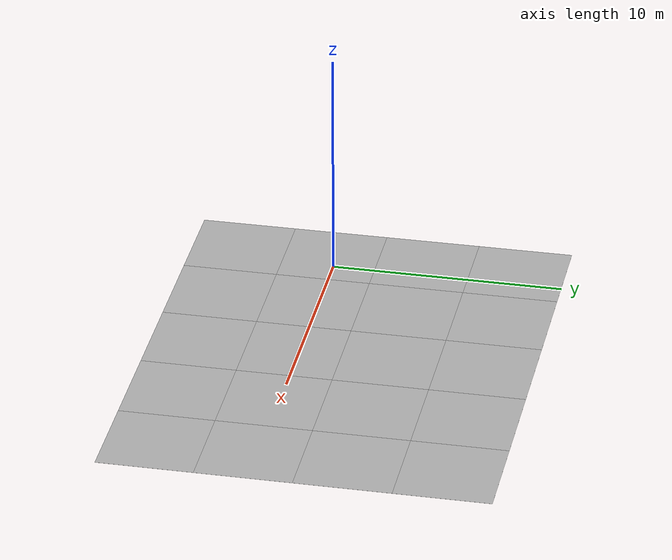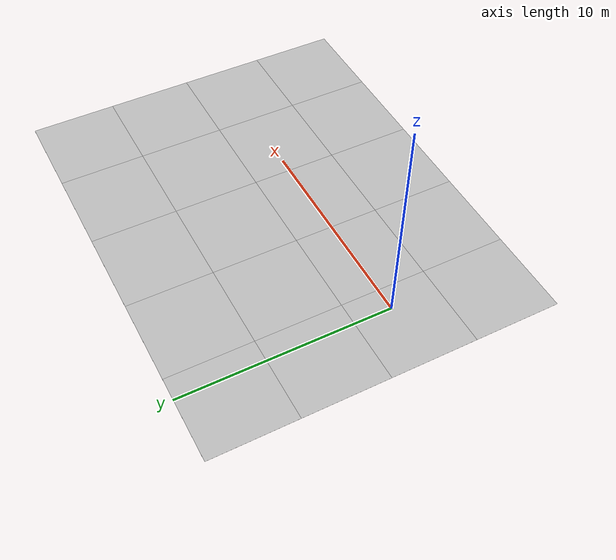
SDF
<sdf version='1.6'><world name='default'>
    <light name='sun_light' type='directional'>
      <pose frame=''>0 0 10 0 -0 0</pose>
      <diffuse>0.5 0.5 0.5 1</diffuse>
      <specular>0.1 0.1 0.1 1</specular>
      <direction>0.1 0.1 -0.9</direction>
      <attenuation>
        <range>20</range>
        <constant>0.5</constant>
        <linear>0.01</linear>
        <quadratic>0.001</quadratic>
      </attenuation>
      <cast_shadows>1</cast_shadows>
    </light>

    <model name='Tile/0-0'>
      <static>1</static>
      <link name='link'>
        <collision name='collision'>
          <geometry>
            <plane>
              <normal>0 0 1</normal>
              <size>4.096 4.096</size>
            </plane>
          </geometry>
          <surface>
            <friction>
              <ode>
                <mu>100</mu>
                <mu2>50</mu2>
              </ode>
              <torsional>
                <ode/>
              </torsional>
            </friction>
            <contact>
              <ode/>
            </contact>
            <bounce/>
          </surface>
          <max_contacts>10</max_contacts>
        </collision>
        <visual name='visual'>
          <cast_shadows>0</cast_shadows>
          <geometry>
            <plane>
              <normal>0 0 1</normal>
              <size>4.096 4.096</size>
            </plane>
          </geometry>
          <material>
            <script>
              <uri>file://materials/scripts</uri>
              <uri>file://materials/textures</uri>
              <name>Tile/5eab350b8220ac9944dbdfa4ac3288c7c17e24c3bf5df0dfcf6173d64dae00a1</name>
            </script>
          </material>
        </visual>
        <self_collide>0</self_collide>
        <enable_wind>0</enable_wind>
        <kinematic>0</kinematic>
      </link>
      <pose frame=''>-0.952 -4.351995000010415 0 0 -0 0</pose>
    </model>

    <model name='Tile/0-1'>
      <static>1</static>
      <link name='link'>
        <collision name='collision'>
          <geometry>
            <plane>
              <normal>0 0 1</normal>
              <size>4.096 4.096</size>
            </plane>
          </geometry>
          <surface>
            <friction>
              <ode>
                <mu>100</mu>
                <mu2>50</mu2>
              </ode>
              <torsional>
                <ode/>
              </torsional>
            </friction>
            <contact>
              <ode/>
            </contact>
            <bounce/>
          </surface>
          <max_contacts>10</max_contacts>
        </collision>
        <visual name='visual'>
          <cast_shadows>0</cast_shadows>
          <geometry>
            <plane>
              <normal>0 0 1</normal>
              <size>4.096 4.096</size>
            </plane>
          </geometry>
          <material>
            <script>
              <uri>file://materials/scripts</uri>
              <uri>file://materials/textures</uri>
              <name>Tile/fed8ceb758e9ae2ef714064cb33e8129fa80b4c62d279d0a538886c799653a61</name>
            </script>
          </material>
        </visual>
        <self_collide>0</self_collide>
        <enable_wind>0</enable_wind>
        <kinematic>0</kinematic>
      </link>
      <pose frame=''>-0.952 -0.2559950000104152 0 0 -0 0</pose>
    </model>

    <model name='Tile/0-2'>
      <static>1</static>
      <link name='link'>
        <collision name='collision'>
          <geometry>
            <plane>
              <normal>0 0 1</normal>
              <size>4.096 4.096</size>
            </plane>
          </geometry>
          <surface>
            <friction>
              <ode>
                <mu>100</mu>
                <mu2>50</mu2>
              </ode>
              <torsional>
                <ode/>
              </torsional>
            </friction>
            <contact>
              <ode/>
            </contact>
            <bounce/>
          </surface>
          <max_contacts>10</max_contacts>
        </collision>
        <visual name='visual'>
          <cast_shadows>0</cast_shadows>
          <geometry>
            <plane>
              <normal>0 0 1</normal>
              <size>4.096 4.096</size>
            </plane>
          </geometry>
          <material>
            <script>
              <uri>file://materials/scripts</uri>
              <uri>file://materials/textures</uri>
              <name>Tile/5eab350b8220ac9944dbdfa4ac3288c7c17e24c3bf5df0dfcf6173d64dae00a1</name>
            </script>
          </material>
        </visual>
        <self_collide>0</self_collide>
        <enable_wind>0</enable_wind>
        <kinematic>0</kinematic>
      </link>
      <pose frame=''>-0.952 3.840004999989585 0 0 -0 0</pose>
    </model>

    <model name='Tile/0-3'>
      <static>1</static>
      <link name='link'>
        <collision name='collision'>
          <geometry>
            <plane>
              <normal>0 0 1</normal>
              <size>4.096 4.096</size>
            </plane>
          </geometry>
          <surface>
            <friction>
              <ode>
                <mu>100</mu>
                <mu2>50</mu2>
              </ode>
              <torsional>
                <ode/>
              </torsional>
            </friction>
            <contact>
              <ode/>
            </contact>
            <bounce/>
          </surface>
          <max_contacts>10</max_contacts>
        </collision>
        <visual name='visual'>
          <cast_shadows>0</cast_shadows>
          <geometry>
            <plane>
              <normal>0 0 1</normal>
              <size>4.096 4.096</size>
            </plane>
          </geometry>
          <material>
            <script>
              <uri>file://materials/scripts</uri>
              <uri>file://materials/textures</uri>
              <name>Tile/5eab350b8220ac9944dbdfa4ac3288c7c17e24c3bf5df0dfcf6173d64dae00a1</name>
            </script>
          </material>
        </visual>
        <self_collide>0</self_collide>
        <enable_wind>0</enable_wind>
        <kinematic>0</kinematic>
      </link>
      <pose frame=''>-0.952 7.936004999989585 0 0 -0 0</pose>
    </model>

    <model name='Tile/1-0'>
      <static>1</static>
      <link name='link'>
        <collision name='collision'>
          <geometry>
            <plane>
              <normal>0 0 1</normal>
              <size>4.096 4.096</size>
            </plane>
          </geometry>
          <surface>
            <friction>
              <ode>
                <mu>100</mu>
                <mu2>50</mu2>
              </ode>
              <torsional>
                <ode/>
              </torsional>
            </friction>
            <contact>
              <ode/>
            </contact>
            <bounce/>
          </surface>
          <max_contacts>10</max_contacts>
        </collision>
        <visual name='visual'>
          <cast_shadows>0</cast_shadows>
          <geometry>
            <plane>
              <normal>0 0 1</normal>
              <size>4.096 4.096</size>
            </plane>
          </geometry>
          <material>
            <script>
              <uri>file://materials/scripts</uri>
              <uri>file://materials/textures</uri>
              <name>Tile/5eab350b8220ac9944dbdfa4ac3288c7c17e24c3bf5df0dfcf6173d64dae00a1</name>
            </script>
          </material>
        </visual>
        <self_collide>0</self_collide>
        <enable_wind>0</enable_wind>
        <kinematic>0</kinematic>
      </link>
      <pose frame=''>3.144 -4.351995000010415 0 0 -0 0</pose>
    </model>

    <model name='Tile/1-1'>
      <static>1</static>
      <link name='link'>
        <collision name='collision'>
          <geometry>
            <plane>
              <normal>0 0 1</normal>
              <size>4.096 4.096</size>
            </plane>
          </geometry>
          <surface>
            <friction>
              <ode>
                <mu>100</mu>
                <mu2>50</mu2>
              </ode>
              <torsional>
                <ode/>
              </torsional>
            </friction>
            <contact>
              <ode/>
            </contact>
            <bounce/>
          </surface>
          <max_contacts>10</max_contacts>
        </collision>
        <visual name='visual'>
          <cast_shadows>0</cast_shadows>
          <geometry>
            <plane>
              <normal>0 0 1</normal>
              <size>4.096 4.096</size>
            </plane>
          </geometry>
          <material>
            <script>
              <uri>file://materials/scripts</uri>
              <uri>file://materials/textures</uri>
              <name>Tile/26ee879a81a4b5fa1c3e963bb3e242b410a22f21c0413dc11eb35b4389189141</name>
            </script>
          </material>
        </visual>
        <self_collide>0</self_collide>
        <enable_wind>0</enable_wind>
        <kinematic>0</kinematic>
      </link>
      <pose frame=''>3.144 -0.2559950000104152 0 0 -0 0</pose>
    </model>

    <model name='Tile/1-2'>
      <static>1</static>
      <link name='link'>
        <collision name='collision'>
          <geometry>
            <plane>
              <normal>0 0 1</normal>
              <size>4.096 4.096</size>
            </plane>
          </geometry>
          <surface>
            <friction>
              <ode>
                <mu>100</mu>
                <mu2>50</mu2>
              </ode>
              <torsional>
                <ode/>
              </torsional>
            </friction>
            <contact>
              <ode/>
            </contact>
            <bounce/>
          </surface>
          <max_contacts>10</max_contacts>
        </collision>
        <visual name='visual'>
          <cast_shadows>0</cast_shadows>
          <geometry>
            <plane>
              <normal>0 0 1</normal>
              <size>4.096 4.096</size>
            </plane>
          </geometry>
          <material>
            <script>
              <uri>file://materials/scripts</uri>
              <uri>file://materials/textures</uri>
              <name>Tile/5eab350b8220ac9944dbdfa4ac3288c7c17e24c3bf5df0dfcf6173d64dae00a1</name>
            </script>
          </material>
        </visual>
        <self_collide>0</self_collide>
        <enable_wind>0</enable_wind>
        <kinematic>0</kinematic>
      </link>
      <pose frame=''>3.144 3.840004999989585 0 0 -0 0</pose>
    </model>

    <model name='Tile/1-3'>
      <static>1</static>
      <link name='link'>
        <collision name='collision'>
          <geometry>
            <plane>
              <normal>0 0 1</normal>
              <size>4.096 4.096</size>
            </plane>
          </geometry>
          <surface>
            <friction>
              <ode>
                <mu>100</mu>
                <mu2>50</mu2>
              </ode>
              <torsional>
                <ode/>
              </torsional>
            </friction>
            <contact>
              <ode/>
            </contact>
            <bounce/>
          </surface>
          <max_contacts>10</max_contacts>
        </collision>
        <visual name='visual'>
          <cast_shadows>0</cast_shadows>
          <geometry>
            <plane>
              <normal>0 0 1</normal>
              <size>4.096 4.096</size>
            </plane>
          </geometry>
          <material>
            <script>
              <uri>file://materials/scripts</uri>
              <uri>file://materials/textures</uri>
              <name>Tile/5eab350b8220ac9944dbdfa4ac3288c7c17e24c3bf5df0dfcf6173d64dae00a1</name>
            </script>
          </material>
        </visual>
        <self_collide>0</self_collide>
        <enable_wind>0</enable_wind>
        <kinematic>0</kinematic>
      </link>
      <pose frame=''>3.144 7.936004999989585 0 0 -0 0</pose>
    </model>

    <model name='Tile/2-0'>
      <static>1</static>
      <link name='link'>
        <collision name='collision'>
          <geometry>
            <plane>
              <normal>0 0 1</normal>
              <size>4.096 4.096</size>
            </plane>
          </geometry>
          <surface>
            <friction>
              <ode>
                <mu>100</mu>
                <mu2>50</mu2>
              </ode>
              <torsional>
                <ode/>
              </torsional>
            </friction>
            <contact>
              <ode/>
            </contact>
            <bounce/>
          </surface>
          <max_contacts>10</max_contacts>
        </collision>
        <visual name='visual'>
          <cast_shadows>0</cast_shadows>
          <geometry>
            <plane>
              <normal>0 0 1</normal>
              <size>4.096 4.096</size>
            </plane>
          </geometry>
          <material>
            <script>
              <uri>file://materials/scripts</uri>
              <uri>file://materials/textures</uri>
              <name>Tile/f2259f6fc08079a74b65c6e55864c6e464e549356f41828ddb981ee060ebe016</name>
            </script>
          </material>
        </visual>
        <self_collide>0</self_collide>
        <enable_wind>0</enable_wind>
        <kinematic>0</kinematic>
      </link>
      <pose frame=''>7.24 -4.351995000010415 0 0 -0 0</pose>
    </model>

    <model name='Tile/2-1'>
      <static>1</static>
      <link name='link'>
        <collision name='collision'>
          <geometry>
            <plane>
              <normal>0 0 1</normal>
              <size>4.096 4.096</size>
            </plane>
          </geometry>
          <surface>
            <friction>
              <ode>
                <mu>100</mu>
                <mu2>50</mu2>
              </ode>
              <torsional>
                <ode/>
              </torsional>
            </friction>
            <contact>
              <ode/>
            </contact>
            <bounce/>
          </surface>
          <max_contacts>10</max_contacts>
        </collision>
        <visual name='visual'>
          <cast_shadows>0</cast_shadows>
          <geometry>
            <plane>
              <normal>0 0 1</normal>
              <size>4.096 4.096</size>
            </plane>
          </geometry>
          <material>
            <script>
              <uri>file://materials/scripts</uri>
              <uri>file://materials/textures</uri>
              <name>Tile/a5f3d9fef925f2d4bf892f34bec0c97e6450fb1d80bd3ba53b4c06359463fa5b</name>
            </script>
          </material>
        </visual>
        <self_collide>0</self_collide>
        <enable_wind>0</enable_wind>
        <kinematic>0</kinematic>
      </link>
      <pose frame=''>7.24 -0.2559950000104152 0 0 -0 0</pose>
    </model>

    <model name='Tile/2-2'>
      <static>1</static>
      <link name='link'>
        <collision name='collision'>
          <geometry>
            <plane>
              <normal>0 0 1</normal>
              <size>4.096 4.096</size>
            </plane>
          </geometry>
          <surface>
            <friction>
              <ode>
                <mu>100</mu>
                <mu2>50</mu2>
              </ode>
              <torsional>
                <ode/>
              </torsional>
            </friction>
            <contact>
              <ode/>
            </contact>
            <bounce/>
          </surface>
          <max_contacts>10</max_contacts>
        </collision>
        <visual name='visual'>
          <cast_shadows>0</cast_shadows>
          <geometry>
            <plane>
              <normal>0 0 1</normal>
              <size>4.096 4.096</size>
            </plane>
          </geometry>
          <material>
            <script>
              <uri>file://materials/scripts</uri>
              <uri>file://materials/textures</uri>
              <name>Tile/0af8f3f4eaa6b5a09864ec4de77c25957cf0e10075d58252e222ce7446fc8a77</name>
            </script>
          </material>
        </visual>
        <self_collide>0</self_collide>
        <enable_wind>0</enable_wind>
        <kinematic>0</kinematic>
      </link>
      <pose frame=''>7.24 3.840004999989585 0 0 -0 0</pose>
    </model>

    <model name='Tile/2-3'>
      <static>1</static>
      <link name='link'>
        <collision name='collision'>
          <geometry>
            <plane>
              <normal>0 0 1</normal>
              <size>4.096 4.096</size>
            </plane>
          </geometry>
          <surface>
            <friction>
              <ode>
                <mu>100</mu>
                <mu2>50</mu2>
              </ode>
              <torsional>
                <ode/>
              </torsional>
            </friction>
            <contact>
              <ode/>
            </contact>
            <bounce/>
          </surface>
          <max_contacts>10</max_contacts>
        </collision>
        <visual name='visual'>
          <cast_shadows>0</cast_shadows>
          <geometry>
            <plane>
              <normal>0 0 1</normal>
              <size>4.096 4.096</size>
            </plane>
          </geometry>
          <material>
            <script>
              <uri>file://materials/scripts</uri>
              <uri>file://materials/textures</uri>
              <name>Tile/5eab350b8220ac9944dbdfa4ac3288c7c17e24c3bf5df0dfcf6173d64dae00a1</name>
            </script>
          </material>
        </visual>
        <self_collide>0</self_collide>
        <enable_wind>0</enable_wind>
        <kinematic>0</kinematic>
      </link>
      <pose frame=''>7.24 7.936004999989585 0 0 -0 0</pose>
    </model>

    <model name='Tile/3-0'>
      <static>1</static>
      <link name='link'>
        <collision name='collision'>
          <geometry>
            <plane>
              <normal>0 0 1</normal>
              <size>4.096 4.096</size>
            </plane>
          </geometry>
          <surface>
            <friction>
              <ode>
                <mu>100</mu>
                <mu2>50</mu2>
              </ode>
              <torsional>
                <ode/>
              </torsional>
            </friction>
            <contact>
              <ode/>
            </contact>
            <bounce/>
          </surface>
          <max_contacts>10</max_contacts>
        </collision>
        <visual name='visual'>
          <cast_shadows>0</cast_shadows>
          <geometry>
            <plane>
              <normal>0 0 1</normal>
              <size>4.096 4.096</size>
            </plane>
          </geometry>
          <material>
            <script>
              <uri>file://materials/scripts</uri>
              <uri>file://materials/textures</uri>
              <name>Tile/44bd86c9536a935033e442f75aa5cf946d4fc713db8c9c4702ff5e0dc5ebb7d9</name>
            </script>
          </material>
        </visual>
        <self_collide>0</self_collide>
        <enable_wind>0</enable_wind>
        <kinematic>0</kinematic>
      </link>
      <pose frame=''>11.336 -4.351995000010415 0 0 -0 0</pose>
    </model>

    <model name='Tile/3-1'>
      <static>1</static>
      <link name='link'>
        <collision name='collision'>
          <geometry>
            <plane>
              <normal>0 0 1</normal>
              <size>4.096 4.096</size>
            </plane>
          </geometry>
          <surface>
            <friction>
              <ode>
                <mu>100</mu>
                <mu2>50</mu2>
              </ode>
              <torsional>
                <ode/>
              </torsional>
            </friction>
            <contact>
              <ode/>
            </contact>
            <bounce/>
          </surface>
          <max_contacts>10</max_contacts>
        </collision>
        <visual name='visual'>
          <cast_shadows>0</cast_shadows>
          <geometry>
            <plane>
              <normal>0 0 1</normal>
              <size>4.096 4.096</size>
            </plane>
          </geometry>
          <material>
            <script>
              <uri>file://materials/scripts</uri>
              <uri>file://materials/textures</uri>
              <name>Tile/a15bc98d7037561f3fcffd54bf113222cb01825edc95535b84166da4f5a8b931</name>
            </script>
          </material>
        </visual>
        <self_collide>0</self_collide>
        <enable_wind>0</enable_wind>
        <kinematic>0</kinematic>
      </link>
      <pose frame=''>11.336 -0.2559950000104152 0 0 -0 0</pose>
    </model>

    <model name='Tile/3-2'>
      <static>1</static>
      <link name='link'>
        <collision name='collision'>
          <geometry>
            <plane>
              <normal>0 0 1</normal>
              <size>4.096 4.096</size>
            </plane>
          </geometry>
          <surface>
            <friction>
              <ode>
                <mu>100</mu>
                <mu2>50</mu2>
              </ode>
              <torsional>
                <ode/>
              </torsional>
            </friction>
            <contact>
              <ode/>
            </contact>
            <bounce/>
          </surface>
          <max_contacts>10</max_contacts>
        </collision>
        <visual name='visual'>
          <cast_shadows>0</cast_shadows>
          <geometry>
            <plane>
              <normal>0 0 1</normal>
              <size>4.096 4.096</size>
            </plane>
          </geometry>
          <material>
            <script>
              <uri>file://materials/scripts</uri>
              <uri>file://materials/textures</uri>
              <name>Tile/c937fa13cd6f6019a13f7c04063b86a4d90672bf8f29f306403fca271a87f0aa</name>
            </script>
          </material>
        </visual>
        <self_collide>0</self_collide>
        <enable_wind>0</enable_wind>
        <kinematic>0</kinematic>
      </link>
      <pose frame=''>11.336 3.840004999989585 0 0 -0 0</pose>
    </model>

    <model name='Tile/3-3'>
      <static>1</static>
      <link name='link'>
        <collision name='collision'>
          <geometry>
            <plane>
              <normal>0 0 1</normal>
              <size>4.096 4.096</size>
            </plane>
          </geometry>
          <surface>
            <friction>
              <ode>
                <mu>100</mu>
                <mu2>50</mu2>
              </ode>
              <torsional>
                <ode/>
              </torsional>
            </friction>
            <contact>
              <ode/>
            </contact>
            <bounce/>
          </surface>
          <max_contacts>10</max_contacts>
        </collision>
        <visual name='visual'>
          <cast_shadows>0</cast_shadows>
          <geometry>
            <plane>
              <normal>0 0 1</normal>
              <size>4.096 4.096</size>
            </plane>
          </geometry>
          <material>
            <script>
              <uri>file://materials/scripts</uri>
              <uri>file://materials/textures</uri>
              <name>Tile/5eab350b8220ac9944dbdfa4ac3288c7c17e24c3bf5df0dfcf6173d64dae00a1</name>
            </script>
          </material>
        </visual>
        <self_collide>0</self_collide>
        <enable_wind>0</enable_wind>
        <kinematic>0</kinematic>
      </link>
      <pose frame=''>11.336 7.936004999989585 0 0 -0 0</pose>
    </model>

    <model name='Tile/4-0'>
      <static>1</static>
      <link name='link'>
        <collision name='collision'>
          <geometry>
            <plane>
              <normal>0 0 1</normal>
              <size>4.096 4.096</size>
            </plane>
          </geometry>
          <surface>
            <friction>
              <ode>
                <mu>100</mu>
                <mu2>50</mu2>
              </ode>
              <torsional>
                <ode/>
              </torsional>
            </friction>
            <contact>
              <ode/>
            </contact>
            <bounce/>
          </surface>
          <max_contacts>10</max_contacts>
        </collision>
        <visual name='visual'>
          <cast_shadows>0</cast_shadows>
          <geometry>
            <plane>
              <normal>0 0 1</normal>
              <size>4.096 4.096</size>
            </plane>
          </geometry>
          <material>
            <script>
              <uri>file://materials/scripts</uri>
              <uri>file://materials/textures</uri>
              <name>Tile/5eab350b8220ac9944dbdfa4ac3288c7c17e24c3bf5df0dfcf6173d64dae00a1</name>
            </script>
          </material>
        </visual>
        <self_collide>0</self_collide>
        <enable_wind>0</enable_wind>
        <kinematic>0</kinematic>
      </link>
      <pose frame=''>15.431999999999999 -4.351995000010415 0 0 -0 0</pose>
    </model>

    <model name='Tile/4-1'>
      <static>1</static>
      <link name='link'>
        <collision name='collision'>
          <geometry>
            <plane>
              <normal>0 0 1</normal>
              <size>4.096 4.096</size>
            </plane>
          </geometry>
          <surface>
            <friction>
              <ode>
                <mu>100</mu>
                <mu2>50</mu2>
              </ode>
              <torsional>
                <ode/>
              </torsional>
            </friction>
            <contact>
              <ode/>
            </contact>
            <bounce/>
          </surface>
          <max_contacts>10</max_contacts>
        </collision>
        <visual name='visual'>
          <cast_shadows>0</cast_shadows>
          <geometry>
            <plane>
              <normal>0 0 1</normal>
              <size>4.096 4.096</size>
            </plane>
          </geometry>
          <material>
            <script>
              <uri>file://materials/scripts</uri>
              <uri>file://materials/textures</uri>
              <name>Tile/5eab350b8220ac9944dbdfa4ac3288c7c17e24c3bf5df0dfcf6173d64dae00a1</name>
            </script>
          </material>
        </visual>
        <self_collide>0</self_collide>
        <enable_wind>0</enable_wind>
        <kinematic>0</kinematic>
      </link>
      <pose frame=''>15.431999999999999 -0.2559950000104152 0 0 -0 0</pose>
    </model>

    <model name='Tile/4-2'>
      <static>1</static>
      <link name='link'>
        <collision name='collision'>
          <geometry>
            <plane>
              <normal>0 0 1</normal>
              <size>4.096 4.096</size>
            </plane>
          </geometry>
          <surface>
            <friction>
              <ode>
                <mu>100</mu>
                <mu2>50</mu2>
              </ode>
              <torsional>
                <ode/>
              </torsional>
            </friction>
            <contact>
              <ode/>
            </contact>
            <bounce/>
          </surface>
          <max_contacts>10</max_contacts>
        </collision>
        <visual name='visual'>
          <cast_shadows>0</cast_shadows>
          <geometry>
            <plane>
              <normal>0 0 1</normal>
              <size>4.096 4.096</size>
            </plane>
          </geometry>
          <material>
            <script>
              <uri>file://materials/scripts</uri>
              <uri>file://materials/textures</uri>
              <name>Tile/5eab350b8220ac9944dbdfa4ac3288c7c17e24c3bf5df0dfcf6173d64dae00a1</name>
            </script>
          </material>
        </visual>
        <self_collide>0</self_collide>
        <enable_wind>0</enable_wind>
        <kinematic>0</kinematic>
      </link>
      <pose frame=''>15.431999999999999 3.840004999989585 0 0 -0 0</pose>
    </model>

    <model name='Tile/4-3'>
      <static>1</static>
      <link name='link'>
        <collision name='collision'>
          <geometry>
            <plane>
              <normal>0 0 1</normal>
              <size>4.096 4.096</size>
            </plane>
          </geometry>
          <surface>
            <friction>
              <ode>
                <mu>100</mu>
                <mu2>50</mu2>
              </ode>
              <torsional>
                <ode/>
              </torsional>
            </friction>
            <contact>
              <ode/>
            </contact>
            <bounce/>
          </surface>
          <max_contacts>10</max_contacts>
        </collision>
        <visual name='visual'>
          <cast_shadows>0</cast_shadows>
          <geometry>
            <plane>
              <normal>0 0 1</normal>
              <size>4.096 4.096</size>
            </plane>
          </geometry>
          <material>
            <script>
              <uri>file://materials/scripts</uri>
              <uri>file://materials/textures</uri>
              <name>Tile/5eab350b8220ac9944dbdfa4ac3288c7c17e24c3bf5df0dfcf6173d64dae00a1</name>
            </script>
          </material>
        </visual>
        <self_collide>0</self_collide>
        <enable_wind>0</enable_wind>
        <kinematic>0</kinematic>
      </link>
      <pose frame=''>15.431999999999999 7.936004999989585 0 0 -0 0</pose>
    </model>
    </world></sdf>
